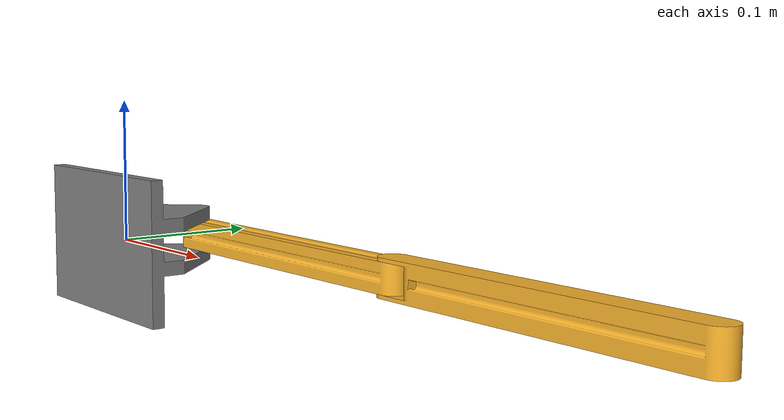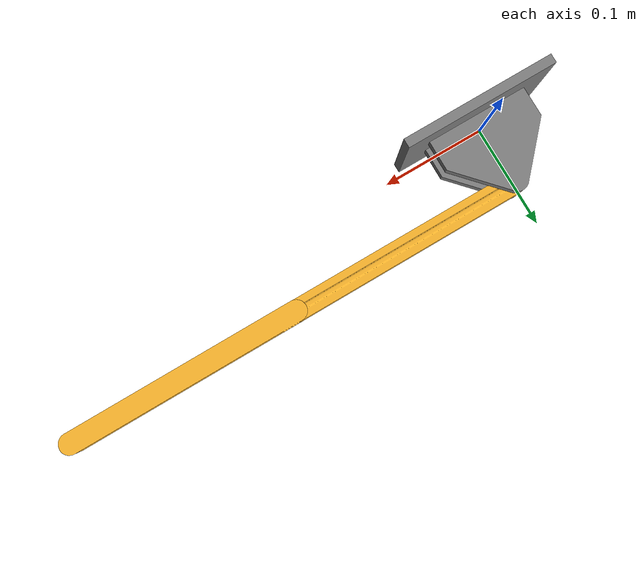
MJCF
<mujoco model="2dof_sys">
  <compiler angle="radian" meshdir="/media/daten/Projekte/Studium/Master/Masterarbeit_SS2024/2DOF_Manipulator/MA24_simulink/stl_files/" autolimits="true"/>
  <statistic meansize="0.1299" extent="0.597575" center="0.185917 0.0393953 -1.69438e-07"/>
  <asset>
    <mesh name="planar_manipulator-holder_fin" file="planar_manipulator-holder_fin.stl" scale="0.001 0.001 0.001"/>
    <mesh name="planar_manipulator-bulk1_fin" file="planar_manipulator-bulk1_fin.stl" scale="0.001 0.001 0.001"/>
    <mesh name="planar_manipulator-bulk2_fin" file="planar_manipulator-bulk2_fin.stl" scale="0.001 0.001 0.001"/>
  </asset>
  <worldbody>
    <geom type="mesh" contype="0" conaffinity="0" group="1" density="0" mesh="planar_manipulator-holder_fin"/>
    <body name="link1" pos="0 0.0583789 0">
      <inertial pos="0.115 0 0" quat="0.5 0.5 0.5 0.5" mass="0.132013" diaginertia="0.00075383 0.000753687 1.05956e-05"/>
      <joint name="joint1" pos="0 0 0" axis="0 0 1" range="-3.14159 3.14159"/>
      <geom pos="0.115 0 0" type="mesh" contype="0" conaffinity="0" group="1" density="0" rgba="0.97 0.7 0.17 1" mesh="planar_manipulator-bulk1_fin"/>
      <body name="link2" pos="0.23 0 0">
        <inertial pos="0.123039 0 0" quat="0.5 0.5 0.5 0.5" mass="0.185821" diaginertia="0.000906382 0.000899989 2.0154e-05"/>
        <joint name="joint2" pos="0 0 0" axis="0 0 1" range="-3.14159 3.14159"/>
        <geom pos="0.123039 0 0" type="mesh" contype="0" conaffinity="0" group="1" density="0" rgba="0.97 0.7 0.17 1" mesh="planar_manipulator-bulk2_fin"/>
      </body>
    </body>
  </worldbody>

<actuator>
    <position name="q1" joint="joint1" ctrlrange="-3.141 3.141"/>
    <position name="q2" joint="joint2" ctrlrange="-3.141 3.141"/>
</actuator>

</mujoco>
